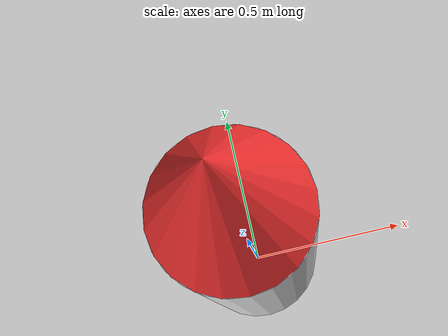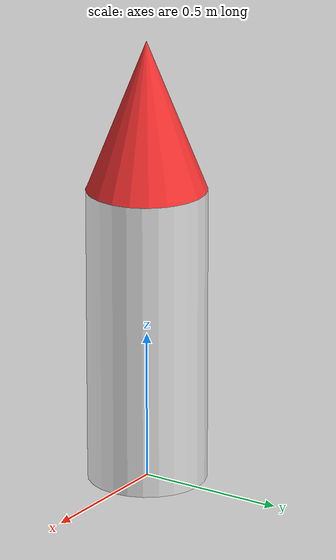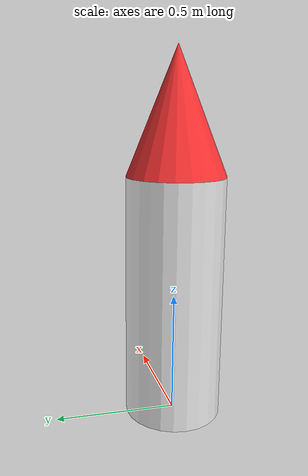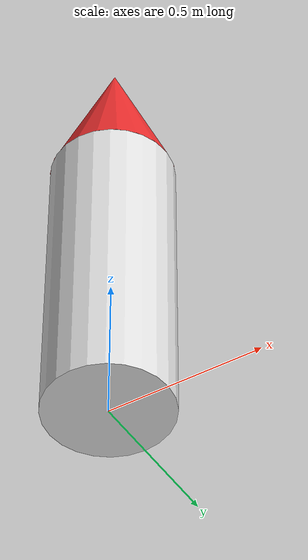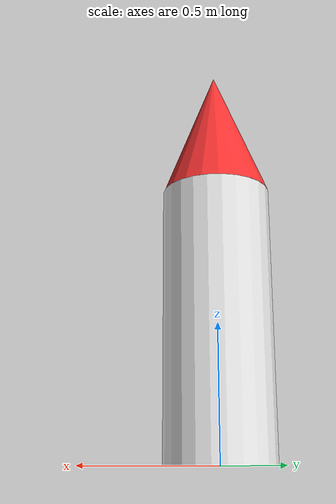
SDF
<?xml version="1.0" ?>
<sdf version="1.6">
  <model name="simple_rocket">
    <static>false</static>
    <link name="base_link">
      <kinematic>true</kinematic>
      <pose>0 0 0.5 0 0 0</pose>
      <visual name="visual_cylinder">
        <geometry>
          <cylinder>
            <radius>0.2</radius>
            <length>1.0</length>
          </cylinder>
        </geometry>
        <material>
          <ambient>0.8 0.8 0.8 1</ambient>
          <diffuse>0.9 0.9 0.9 1</diffuse>
        </material>
      </visual>
      <visual name="visual_cone">
        <pose>0 0 0.75 0 0 0</pose>
        <geometry>
          <cone>
            <radius>0.2</radius>
            <length>0.5</length>
          </cone>
        </geometry>
        <material>
          <ambient>0.9 0.1 0.1 1</ambient>
          <diffuse>1.0 0.2 0.2 1</diffuse>
        </material>
      </visual>
    </link>
  </model>
</sdf>
